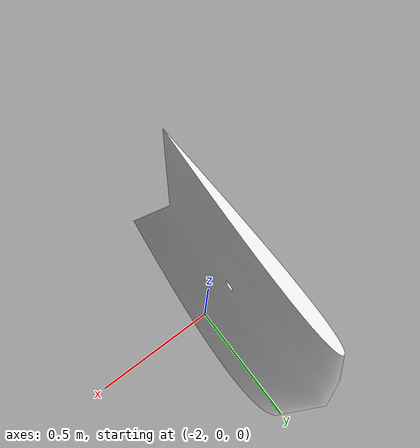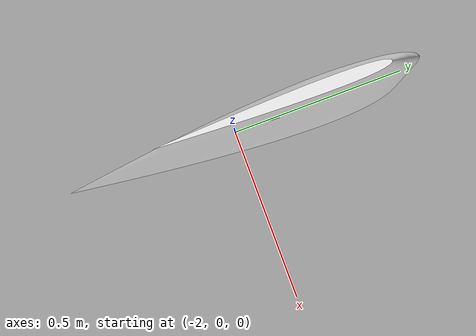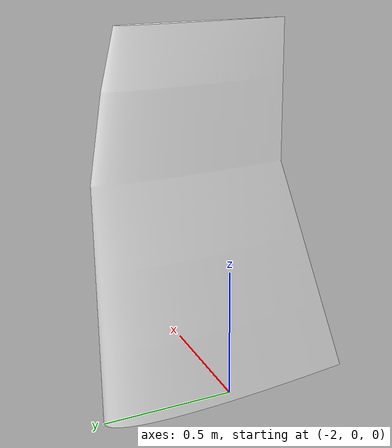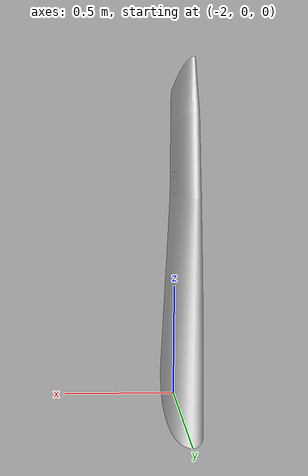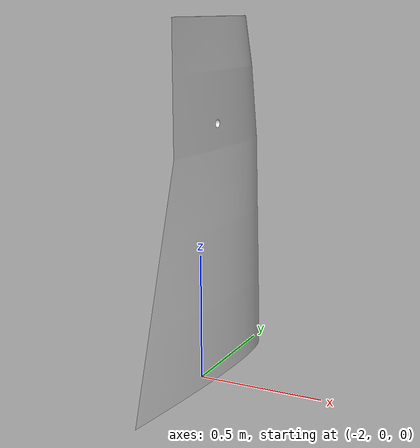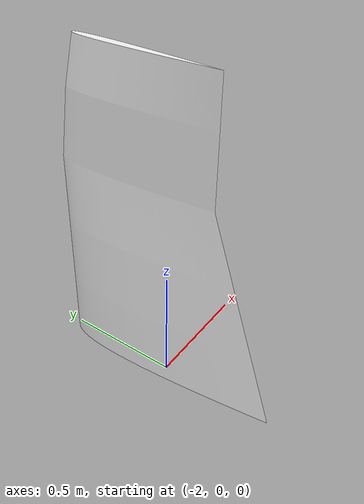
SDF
<?xml version='1.0'?>
<sdf version='1.7'>
  <model name='wing'>
    <link name='my_wing'>
      <pose>0 0 0 0 -0 0</pose>
      <inertial>
        <pose>-2 0 0 0 -0 0</pose>
        <mass>1</mass>
        <inertia>
          <ixx>1</ixx>
          <ixy>0</ixy>
          <ixz>0</ixz>
          <iyy>1</iyy>
          <iyz>0</iyz>
          <izz>1</izz>
        </inertia>
      </inertial>
      <self_collide>0</self_collide>
      <enable_wind>0</enable_wind>
      <kinematic>0</kinematic>
      <gravity>1</gravity>
      <visual name='my_wing_visual'>
        <pose>-2 0 0 1.5708 -0 3.14159</pose>
        <geometry>
          <mesh>
            <scale>0.01 0.01 0.01</scale>
            <uri>/home/anton/catkin_ws/src/panda_controllers/models/wingprofile.dae</uri>
          </mesh>
        </geometry>
        <material>
          <script>
            <name>Gazebo/White</name>
            <uri>file://media/materials/scripts/gazebo.material</uri>
          </script>
          <shader type='pixel'>
            <normal_map>__default__</normal_map>
          </shader>
          <ambient>1 0.509 0.047 1</ambient>
          <diffuse>1 0.509 0.047 1</diffuse>
          <specular>0.5 0.5 0.5 1</specular>
          <emissive>0 0 0 1</emissive>
        </material>
        <transparency>0</transparency>
        <cast_shadows>1</cast_shadows>
      </visual>
      <collision name='my_wing_collision'>
        <laser_retro>0</laser_retro>
        <max_contacts>10</max_contacts>
        <pose>-2 0 0 1.5708 -0 3.14159</pose>
        <geometry>
          <mesh>
            <uri>/home/anton/catkin_ws/src/panda_controllers/models/wingprofile.stl</uri>
            <scale>0.01 0.01 0.01</scale>
          </mesh>
        </geometry>
        <surface>
          <friction>
            <ode>
              <mu>1</mu>
              <mu2>1</mu2>
              <fdir1>0 0 0</fdir1>
              <slip1>0</slip1>
              <slip2>0</slip2>
            </ode>
            <torsional>
              <coefficient>1</coefficient>
              <patch_radius>0</patch_radius>
              <surface_radius>0</surface_radius>
              <use_patch_radius>1</use_patch_radius>
              <ode>
                <slip>0</slip>
              </ode>
            </torsional>
          </friction>
          <bounce>
            <restitution_coefficient>0</restitution_coefficient>
            <threshold>1e+06</threshold>
          </bounce>
          <contact>
            <collide_without_contact>0</collide_without_contact>
            <collide_without_contact_bitmask>1</collide_without_contact_bitmask>
            <collide_bitmask>1</collide_bitmask>
            <ode>
              <soft_cfm>0</soft_cfm>
              <soft_erp>0.2</soft_erp>
              <kp>1e+13</kp>
              <kd>1</kd>
              <max_vel>0.01</max_vel>
              <min_depth>0</min_depth>
            </ode>
            <bullet>
              <split_impulse>1</split_impulse>
              <split_impulse_penetration_threshold>-0.01</split_impulse_penetration_threshold>
              <soft_cfm>0</soft_cfm>
              <soft_erp>0.2</soft_erp>
              <kp>1e+13</kp>
              <kd>1</kd>
            </bullet>
          </contact>
        </surface>
      </collision>
    </link>
    <static>1</static>
    <allow_auto_disable>1</allow_auto_disable>
  </model>
</sdf>
